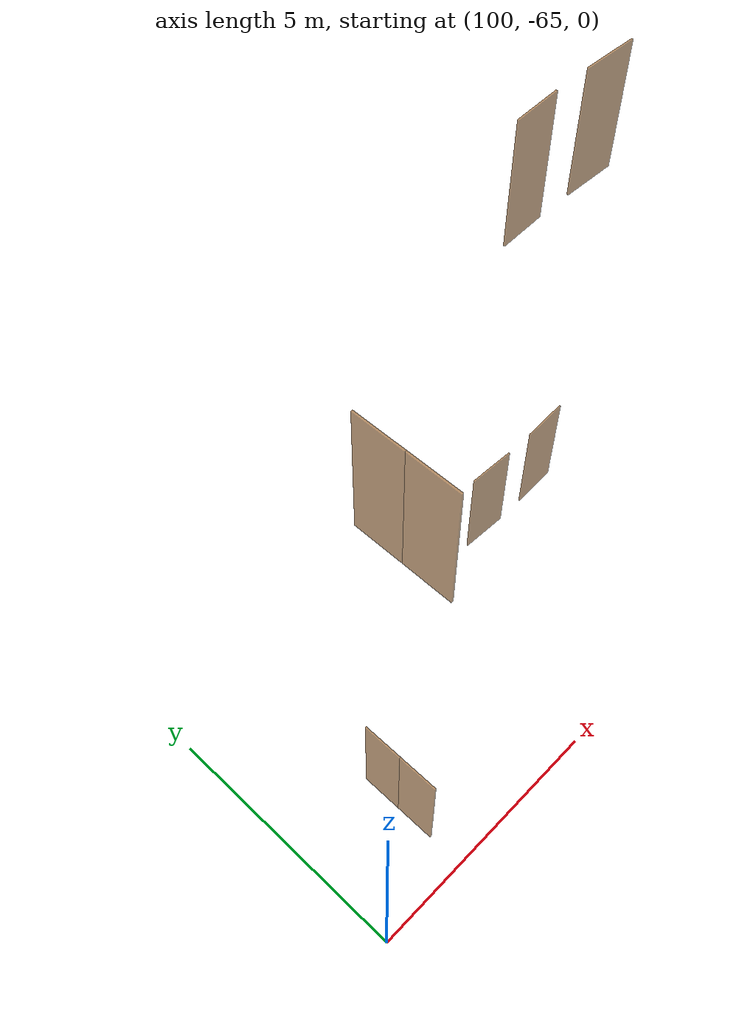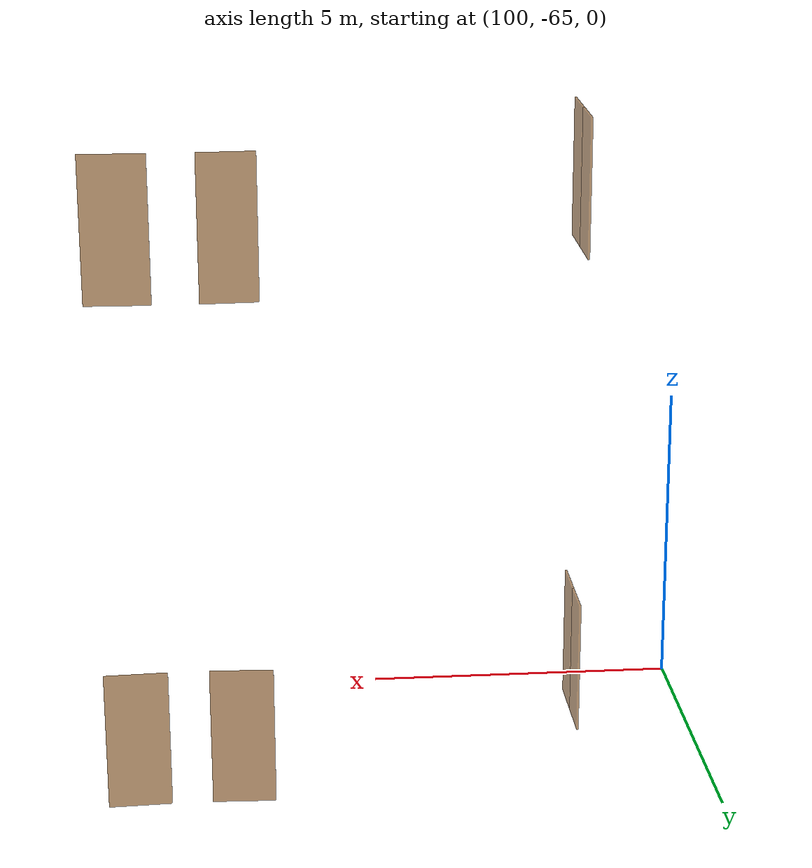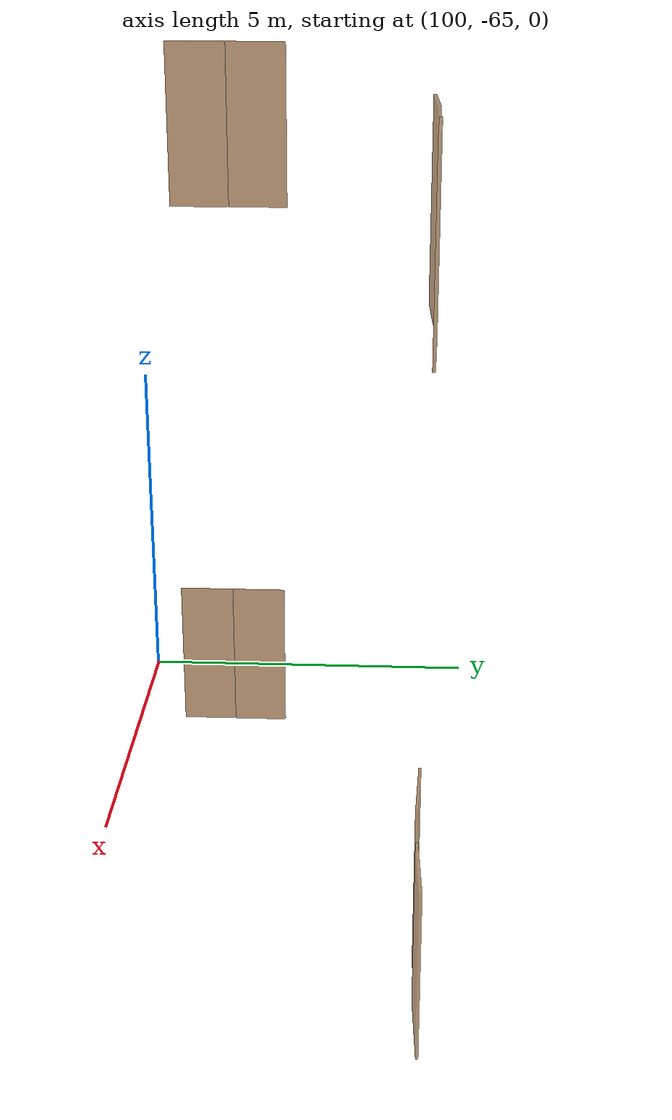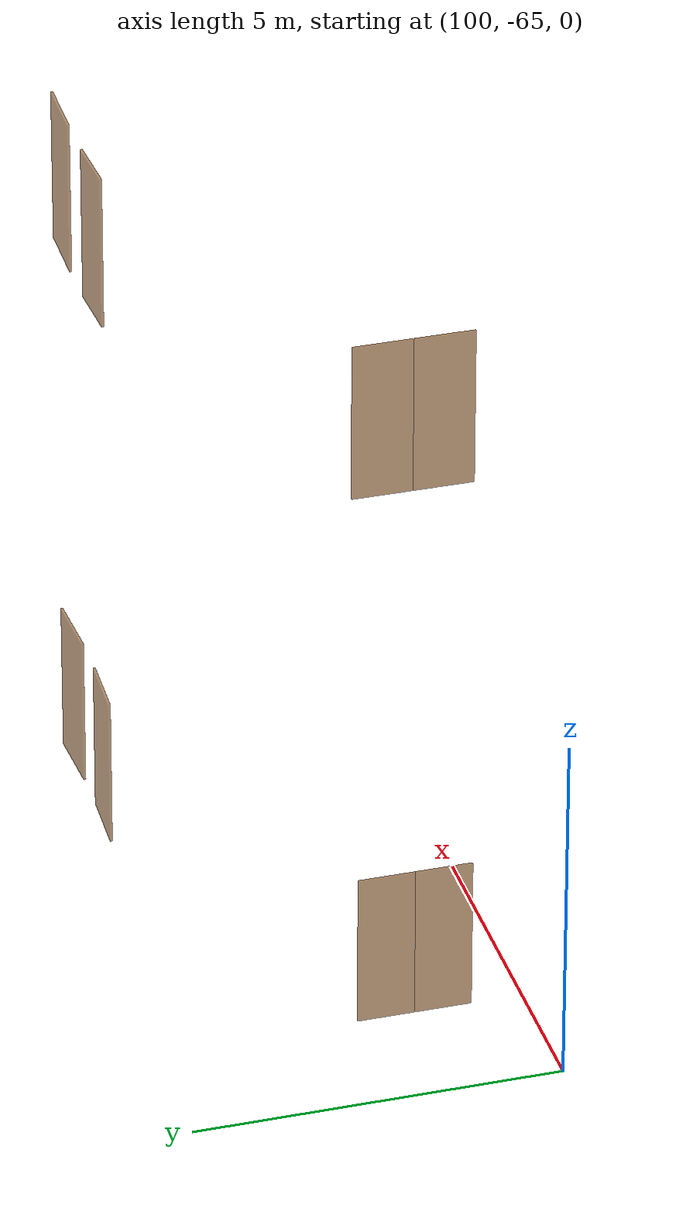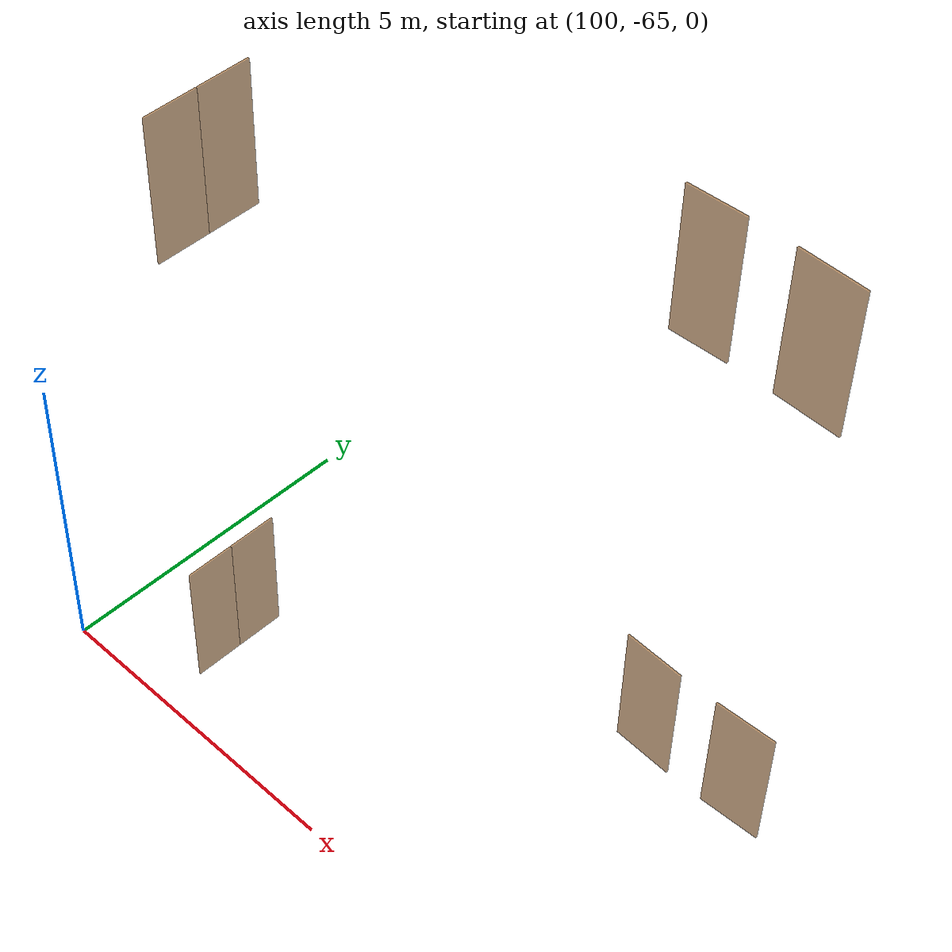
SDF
<sdf version="1.7">
 <world name="sim_world">
  <model name="puerta126">
   <pose>101.83865633901182 -63.51941063366975 0.0 0 0 -1.5707963267948966</pose>
   <link name="right">
    <pose>0.39199929316430904 0 1.11 0 0 0</pose>
    <visual name="right_visual">
     <geometry><box><size>0.7739985863286181 0.03 2.2</size></box></geometry>
     <material>
      <ambient>0.5 0.25 0 0.6</ambient>
      <diffuse>0.5 0.25 0 0.6</diffuse>
      <pbr><metal><metalness>0.0</metalness></metal></pbr>
     </material>
    </visual>
    <collision name="right_collision">
     <geometry><box><size>0.7739985863286181 0.03 2.2</size></box></geometry>
     <surface><contact><collide_bitmask>0x02</collide_bitmask></contact></surface>
    </collision>
    <inertial>
     <mass>50.0</mass>
     <inertia><ixx>20.17041666666667</ixx><iyy>22.662807548494584</iyy><izz>2.4998908818279135</izz></inertia>
    </inertial>
   </link>
   <joint name="right_joint" type="revolute">
    <parent>world</parent>
    <child>right</child>
    <axis><xyz>0 0 1</xyz><limit><lower>0</lower><upper>1.57</upper></limit></axis>
    <pose>0.39199929316430904 0 0 0 0 0</pose>
   </joint>
   <link name="left">
    <pose>-0.39199929316430904 0 1.11 0 0 0</pose>
    <visual name="left_visual">
     <geometry><box><size>0.7739985863286181 0.03 2.2</size></box></geometry>
     <material>
      <ambient>0.5 0.25 0 0.6</ambient>
      <diffuse>0.5 0.25 0 0.6</diffuse>
      <pbr><metal><metalness>0.0</metalness></metal></pbr>
     </material>
    </visual>
    <collision name="left_collision">
     <geometry><box><size>0.7739985863286181 0.03 2.2</size></box></geometry>
     <surface><contact><collide_bitmask>0x02</collide_bitmask></contact></surface>
    </collision>
    <inertial>
     <mass>50.0</mass>
     <inertia><ixx>20.17041666666667</ixx><iyy>22.662807548494584</iyy><izz>2.4998908818279135</izz></inertia>
    </inertial>
   </link>
   <joint name="left_joint" type="revolute">
    <parent>world</parent>
    <child>left</child>
    <axis><xyz>0 0 1</xyz><limit><lower>-1.57</lower><upper>0</upper></limit></axis>
    <pose>-0.39199929316430904 0 0 0 0 0</pose>
   </joint>
   <plugin name="register_component" filename="libregister_component.so">
    <component name="Door">
     <v_max_door>0.5</v_max_door>
     <a_max_door>0.3</a_max_door>
     <a_nom_door>0.15</a_nom_door>
     <dx_min_door>0.01</dx_min_door>
     <f_max_door>500.0</f_max_door>
     <ros_interface>true</ros_interface>
     <door name="puerta126" type="DoubleSwingDoor" left_joint_name="left_joint" right_joint_name="right_joint"/>
    </component>
   </plugin>
  </model>
  <model name="puerta129">
   <pose>107.3509228833847 -60.73372069051113 0.0 0 0 -0.042826044246955026</pose>
   <link name="right">
    <pose>0 0 1.11 0 0 0</pose>
    <visual name="right_visual">
     <geometry><box><size>0.9727294921079268 0.03 2.2</size></box></geometry>
     <material>
      <ambient>0.5 0.25 0 0.6</ambient>
      <diffuse>0.5 0.25 0 0.6</diffuse>
      <pbr><metal><metalness>0.0</metalness></metal></pbr>
     </material>
    </visual>
    <collision name="right_collision">
     <geometry><box><size>0.9727294921079268 0.03 2.2</size></box></geometry>
     <surface><contact><collide_bitmask>0x02</collide_bitmask></contact></surface>
    </collision>
    <inertial>
     <mass>50.0</mass>
     <inertia><ixx>20.17041666666667</ixx><iyy>24.109177770068943</iyy><izz>3.9462611034022723</izz></inertia>
    </inertial>
   </link>
   <joint name="right_joint" type="revolute">
    <parent>world</parent>
    <child>right</child>
    <axis><xyz>0 0 1</xyz><limit><lower>0</lower><upper>1.57</upper></limit></axis>
    <pose>0.4913647460539634 0 0 0 0 0</pose>
   </joint>
   <plugin name="register_component" filename="libregister_component.so">
    <component name="Door">
     <v_max_door>0.5</v_max_door>
     <a_max_door>0.3</a_max_door>
     <a_nom_door>0.15</a_nom_door>
     <dx_min_door>0.01</dx_min_door>
     <f_max_door>500.0</f_max_door>
     <ros_interface>true</ros_interface>
     <door name="puerta129" type="SwingDoor" left_joint_name="empty_joint" right_joint_name="right_joint"/>
    </component>
   </plugin>
  </model>
  <model name="puerta130">
   <pose>108.94992826459212 -60.73372069051113 0.0 0 0 -3.0987666093428397</pose>
   <link name="right">
    <pose>0 0 1.11 0 0 0</pose>
    <visual name="right_visual">
     <geometry><box><size>0.9727294921079552 0.03 2.2</size></box></geometry>
     <material>
      <ambient>0.5 0.25 0 0.6</ambient>
      <diffuse>0.5 0.25 0 0.6</diffuse>
      <pbr><metal><metalness>0.0</metalness></metal></pbr>
     </material>
    </visual>
    <collision name="right_collision">
     <geometry><box><size>0.9727294921079552 0.03 2.2</size></box></geometry>
     <surface><contact><collide_bitmask>0x02</collide_bitmask></contact></surface>
    </collision>
    <inertial>
     <mass>50.0</mass>
     <inertia><ixx>20.17041666666667</ixx><iyy>24.109177770069174</iyy><izz>3.9462611034025024</izz></inertia>
    </inertial>
   </link>
   <joint name="right_joint" type="revolute">
    <parent>world</parent>
    <child>right</child>
    <axis><xyz>0 0 -1</xyz><limit><lower>0</lower><upper>1.57</upper></limit></axis>
    <pose>0.4913647460539776 0 0 0 0 0</pose>
   </joint>
   <plugin name="register_component" filename="libregister_component.so">
    <component name="Door">
     <v_max_door>0.5</v_max_door>
     <a_max_door>0.3</a_max_door>
     <a_nom_door>0.15</a_nom_door>
     <dx_min_door>0.01</dx_min_door>
     <f_max_door>500.0</f_max_door>
     <ros_interface>true</ros_interface>
     <door name="puerta130" type="SwingDoor" left_joint_name="empty_joint" right_joint_name="right_joint"/>
    </component>
   </plugin>
  </model>
  <model name="puerta195">
   <pose>108.98121548702917 -60.69997213528409 8.0 0 0 3.114694549839733</pose>
   <link name="right">
    <pose>0 0 1.11 0 0 0</pose>
    <visual name="right_visual">
     <geometry><box><size>0.9773733842408654 0.03 2.2</size></box></geometry>
     <material>
      <ambient>0.5 0.25 0 0.6</ambient>
      <diffuse>0.5 0.25 0 0.6</diffuse>
      <pbr><metal><metalness>0.0</metalness></metal></pbr>
     </material>
    </visual>
    <collision name="right_collision">
     <geometry><box><size>0.9773733842408654 0.03 2.2</size></box></geometry>
     <surface><contact><collide_bitmask>0x02</collide_bitmask></contact></surface>
    </collision>
    <inertial>
     <mass>50.0</mass>
     <inertia><ixx>20.17041666666667</ixx><iyy>24.146911384260182</iyy><izz>3.98399471759351</izz></inertia>
    </inertial>
   </link>
   <joint name="right_joint" type="revolute">
    <parent>world</parent>
    <child>right</child>
    <axis><xyz>0 0 -1</xyz><limit><lower>0</lower><upper>1.57</upper></limit></axis>
    <pose>0.4936866921204327 0 0 0 0 0</pose>
   </joint>
   <plugin name="register_component" filename="libregister_component.so">
    <component name="Door">
     <v_max_door>0.5</v_max_door>
     <a_max_door>0.3</a_max_door>
     <a_nom_door>0.15</a_nom_door>
     <dx_min_door>0.01</dx_min_door>
     <f_max_door>500.0</f_max_door>
     <ros_interface>true</ros_interface>
     <door name="puerta195" type="SwingDoor" left_joint_name="empty_joint" right_joint_name="right_joint"/>
    </component>
   </plugin>
  </model>
  <model name="puerta196">
   <pose>107.37954466529564 -60.70501336240777 8.0 0 0 0.04155075615336101</pose>
   <link name="right">
    <pose>0 0 1.11 0 0 0</pose>
    <visual name="right_visual">
     <geometry><box><size>0.8611086866081701 0.03 2.2</size></box></geometry>
     <material>
      <ambient>0.5 0.25 0 0.6</ambient>
      <diffuse>0.5 0.25 0 0.6</diffuse>
      <pbr><metal><metalness>0.0</metalness></metal></pbr>
     </material>
    </visual>
    <collision name="right_collision">
     <geometry><box><size>0.8611086866081701 0.03 2.2</size></box></geometry>
     <surface><contact><collide_bitmask>0x02</collide_bitmask></contact></surface>
    </collision>
    <inertial>
     <mass>50.0</mass>
     <inertia><ixx>20.17041666666667</ixx><iyy>23.2562840423002</iyy><izz>3.0933673756335325</izz></inertia>
    </inertial>
   </link>
   <joint name="right_joint" type="revolute">
    <parent>world</parent>
    <child>right</child>
    <axis><xyz>0 0 1</xyz><limit><lower>0</lower><upper>1.57</upper></limit></axis>
    <pose>0.43555434330408505 0 0 0 0 0</pose>
   </joint>
   <plugin name="register_component" filename="libregister_component.so">
    <component name="Door">
     <v_max_door>0.5</v_max_door>
     <a_max_door>0.3</a_max_door>
     <a_nom_door>0.15</a_nom_door>
     <dx_min_door>0.01</dx_min_door>
     <f_max_door>500.0</f_max_door>
     <ros_interface>true</ros_interface>
     <door name="puerta196" type="SwingDoor" left_joint_name="empty_joint" right_joint_name="right_joint"/>
    </component>
   </plugin>
  </model>
  <model name="puerta199">
   <pose>101.85771576278702 -63.445725129856605 8.0 0 0 -1.5704598308476787</pose>
   <link name="right">
    <pose>0.4071715135142036 0 1.11 0 0 0</pose>
    <visual name="right_visual">
     <geometry><box><size>0.8043430270284072 0.03 2.2</size></box></geometry>
     <material>
      <ambient>0.5 0.25 0 0.6</ambient>
      <diffuse>0.5 0.25 0 0.6</diffuse>
      <pbr><metal><metalness>0.0</metalness></metal></pbr>
     </material>
    </visual>
    <collision name="right_collision">
     <geometry><box><size>0.8043430270284072 0.03 2.2</size></box></geometry>
     <surface><contact><collide_bitmask>0x02</collide_bitmask></contact></surface>
    </collision>
    <inertial>
     <mass>50.0</mass>
     <inertia><ixx>20.17041666666667</ixx><iyy>22.862365438038424</iyy><izz>2.6994487713717543</izz></inertia>
    </inertial>
   </link>
   <joint name="right_joint" type="revolute">
    <parent>world</parent>
    <child>right</child>
    <axis><xyz>0 0 1</xyz><limit><lower>0</lower><upper>1.57</upper></limit></axis>
    <pose>0.4071715135142036 0 0 0 0 0</pose>
   </joint>
   <link name="left">
    <pose>-0.4071715135142036 0 1.11 0 0 0</pose>
    <visual name="left_visual">
     <geometry><box><size>0.8043430270284072 0.03 2.2</size></box></geometry>
     <material>
      <ambient>0.5 0.25 0 0.6</ambient>
      <diffuse>0.5 0.25 0 0.6</diffuse>
      <pbr><metal><metalness>0.0</metalness></metal></pbr>
     </material>
    </visual>
    <collision name="left_collision">
     <geometry><box><size>0.8043430270284072 0.03 2.2</size></box></geometry>
     <surface><contact><collide_bitmask>0x02</collide_bitmask></contact></surface>
    </collision>
    <inertial>
     <mass>50.0</mass>
     <inertia><ixx>20.17041666666667</ixx><iyy>22.862365438038424</iyy><izz>2.6994487713717543</izz></inertia>
    </inertial>
   </link>
   <joint name="left_joint" type="revolute">
    <parent>world</parent>
    <child>left</child>
    <axis><xyz>0 0 1</xyz><limit><lower>-1.57</lower><upper>0</upper></limit></axis>
    <pose>-0.4071715135142036 0 0 0 0 0</pose>
   </joint>
   <plugin name="register_component" filename="libregister_component.so">
    <component name="Door">
     <v_max_door>0.5</v_max_door>
     <a_max_door>0.3</a_max_door>
     <a_nom_door>0.15</a_nom_door>
     <dx_min_door>0.01</dx_min_door>
     <f_max_door>500.0</f_max_door>
     <ros_interface>true</ros_interface>
     <door name="puerta199" type="DoubleSwingDoor" left_joint_name="left_joint" right_joint_name="right_joint"/>
    </component>
   </plugin>
  </model>
 </world>
</sdf>
